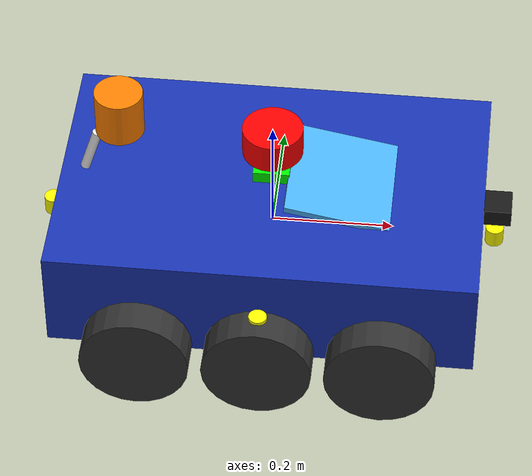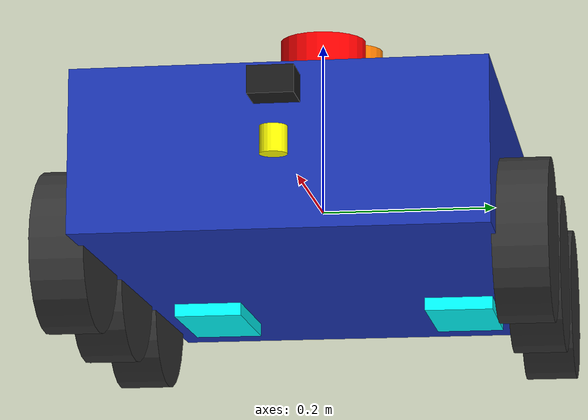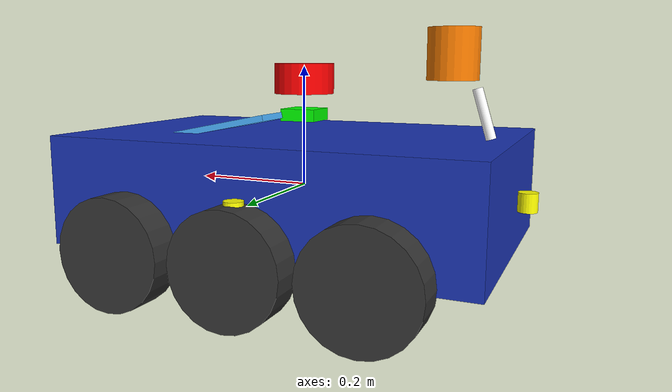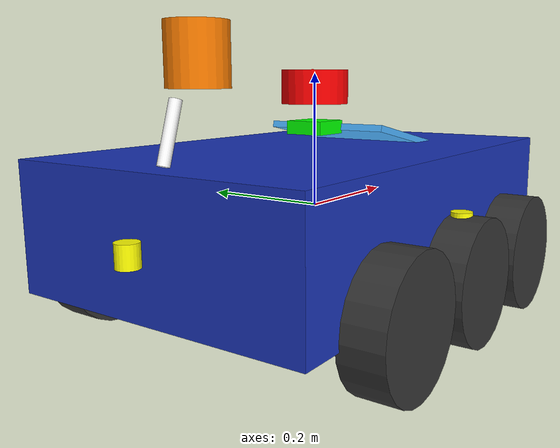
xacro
<?xml version="1.0"?>
<robot xmlns:xacro="http://www.ros.org/wiki/xacro" name="my_rover">

  <!-- Include all sensor files -->
  <xacro:include filename="$(find my_rover_package)/urdf/lidar.xacro"/>
  <xacro:include filename="$(find my_rover_package)/urdf/camera.xacro"/>
  <xacro:include filename="$(find my_rover_package)/urdf/imu.xacro"/>
  <xacro:include filename="$(find my_rover_package)/urdf/gps.xacro"/>
  <xacro:include filename="$(find my_rover_package)/urdf/ultrasonic.xacro"/>

  <!-- MAIN CHASSIS - DARK BLUE -->
  <link name="base_link">
    <visual>
      <geometry>
        <box size="0.7 0.45 0.18"/>
      </geometry>
      <material name="chassis_blue">
        <color rgba="0.1 0.2 0.7 1"/>
      </material>
    </visual>
    <collision>
      <geometry>
        <box size="0.7 0.45 0.18"/>
      </geometry>
    </collision>
    <inertial>
      <mass value="15.0"/>
      <inertia ixx="0.15" ixy="0.0" ixz="0.0" iyy="0.15" iyz="0.0" izz="0.15"/>
    </inertial>
  </link>

  <!-- Gazebo color for chassis -->
  <gazebo reference="base_link">
    <material>Gazebo/Blue</material>
  </gazebo>

  <!-- RPLIDAR A2M8 - BRIGHT RED -->
  <xacro:lidar_sensor parent="base_link">
    <origin xyz="0.0 0 0.18" rpy="0 0 0"/>
  </xacro:lidar_sensor>

  <!-- Camera - BLACK -->
  <xacro:camera_sensor parent="base_link" camera_name="front_camera">
    <origin xyz="0.37 0 0.06" rpy="0 0 0"/>
  </xacro:camera_sensor>

  <!-- IMU - BRIGHT GREEN -->
  <xacro:imu_sensor parent="base_link">
    <origin xyz="0.0 0 0.12" rpy="0 0 0"/>
  </xacro:imu_sensor>

  <!-- GPS - ORANGE -->
  <xacro:gps_sensor parent="base_link">
    <origin xyz="-0.25 0 0.22" rpy="0 0 0"/>
  </xacro:gps_sensor>

  <!-- 4x Ultrasonic - YELLOW -->
  <xacro:ultrasonic_sensor name="ultrasonic_front" parent="base_link">
    <origin xyz="0.37 0 0.0" rpy="0 0 0"/>
  </xacro:ultrasonic_sensor>

  <xacro:ultrasonic_sensor name="ultrasonic_back" parent="base_link">
    <origin xyz="-0.37 0 0.0" rpy="0 0 3.14159"/>
  </xacro:ultrasonic_sensor>

  <xacro:ultrasonic_sensor name="ultrasonic_left" parent="base_link">
    <origin xyz="0 0.24 0.0" rpy="0 0 1.5708"/>
  </xacro:ultrasonic_sensor>

  <xacro:ultrasonic_sensor name="ultrasonic_right" parent="base_link">
    <origin xyz="0 -0.24 0.0" rpy="0 0 -1.5708"/>
  </xacro:ultrasonic_sensor>

  <!-- Battery Pack Indicators - CYAN -->
  <link name="battery_left">
    <visual>
      <geometry>
        <box size="0.15 0.08 0.05"/>
      </geometry>
      <material name="battery_cyan">
        <color rgba="0 1 1 1"/>
      </material>
    </visual>
    <inertial>
      <mass value="0.5"/>
      <inertia ixx="0.001" ixy="0.0" ixz="0.0" iyy="0.001" iyz="0.0" izz="0.001"/>
    </inertial>
  </link>

  <joint name="battery_left_joint" type="fixed">
    <parent link="base_link"/>
    <child link="battery_left"/>
    <origin xyz="-0.15 0.15 -0.08" rpy="0 0 0"/>
  </joint>

  <gazebo reference="battery_left">
    <material>Gazebo/Turquoise</material>
  </gazebo>

  <link name="battery_right">
    <visual>
      <geometry>
        <box size="0.15 0.08 0.05"/>
      </geometry>
      <material name="battery_cyan">
        <color rgba="0 1 1 1"/>
      </material>
    </visual>
    <inertial>
      <mass value="0.5"/>
      <inertia ixx="0.001" ixy="0.0" ixz="0.0" iyy="0.001" iyz="0.0" izz="0.001"/>
    </inertial>
  </link>

  <joint name="battery_right_joint" type="fixed">
    <parent link="base_link"/>
    <child link="battery_right"/>
    <origin xyz="-0.15 -0.15 -0.08" rpy="0 0 0"/>
  </joint>

  <gazebo reference="battery_right">
    <material>Gazebo/Turquoise</material>
  </gazebo>

  <!-- Motor Controllers - MAGENTA -->
  <link name="motor_controller_left">
    <visual>
      <geometry>
        <box size="0.08 0.06 0.03"/>
      </geometry>
      <material name="controller_magenta">
        <color rgba="1 0 1 1"/>
      </material>
    </visual>
    <inertial>
      <mass value="0.1"/>
      <inertia ixx="0.0001" ixy="0.0" ixz="0.0" iyy="0.0001" iyz="0.0" izz="0.0001"/>
    </inertial>
  </link>

  <joint name="motor_controller_left_joint" type="fixed">
    <parent link="base_link"/>
    <child link="motor_controller_left"/>
    <origin xyz="0.1 0.18 -0.05" rpy="0 0 0"/>
  </joint>

  <gazebo reference="motor_controller_left">
    <material>Gazebo/Purple</material>
  </gazebo>

  <link name="motor_controller_right">
    <visual>
      <geometry>
        <box size="0.08 0.06 0.03"/>
      </geometry>
      <material name="controller_magenta">
        <color rgba="1 0 1 1"/>
      </material>
    </visual>
    <inertial>
      <mass value="0.1"/>
      <inertia ixx="0.0001" ixy="0.0" ixz="0.0" iyy="0.0001" iyz="0.0" izz="0.0001"/>
    </inertial>
  </link>

  <joint name="motor_controller_right_joint" type="fixed">
    <parent link="base_link"/>
    <child link="motor_controller_right"/>
    <origin xyz="0.1 -0.18 -0.05" rpy="0 0 0"/>
  </joint>

  <gazebo reference="motor_controller_right">
    <material>Gazebo/Purple</material>
  </gazebo>

  <!-- Solar Panel - SKY BLUE -->
  <link name="solar_panel">
    <visual>
      <geometry>
        <box size="0.25 0.20 0.01"/>
      </geometry>
      <material name="solar_blue">
        <color rgba="0.3 0.7 1 1"/>
      </material>
    </visual>
    <inertial>
      <mass value="0.2"/>
      <inertia ixx="0.001" ixy="0.0" ixz="0.0" iyy="0.001" iyz="0.0" izz="0.001"/>
    </inertial>
  </link>

  <joint name="solar_panel_joint" type="fixed">
    <parent link="base_link"/>
    <child link="solar_panel"/>
    <origin xyz="0.15 0 0.095" rpy="0 0.2 0"/>
  </joint>

  <gazebo reference="solar_panel">
    <material>Gazebo/SkyBlue</material>
  </gazebo>

  <!-- WiFi Antenna - WHITE -->
  <link name="wifi_antenna">
    <visual>
      <geometry>
        <cylinder radius="0.008" length="0.08"/>
      </geometry>
      <material name="antenna_white">
        <color rgba="1 1 1 1"/>
      </material>
    </visual>
    <inertial>
      <mass value="0.01"/>
      <inertia ixx="0.0001" ixy="0.0" ixz="0.0" iyy="0.0001" iyz="0.0" izz="0.0001"/>
    </inertial>
  </link>

  <joint name="wifi_antenna_joint" type="fixed">
    <parent link="base_link"/>
    <child link="wifi_antenna"/>
    <origin xyz="-0.3 0 0.13" rpy="0 0.3 0"/>
  </joint>

  <gazebo reference="wifi_antenna">
    <material>Gazebo/White</material>
  </gazebo>

  <!-- 6 WHEELS - BLACK -->

  <!-- Left Front Wheel -->
  <link name="left_front_wheel">
    <visual>
      <geometry>
        <cylinder radius="0.09" length="0.06"/>
      </geometry>
      <material name="wheel_black">
        <color rgba="0.2 0.2 0.2 1"/>
      </material>
    </visual>
    <collision>
      <geometry>
        <cylinder radius="0.09" length="0.06"/>
      </geometry>
    </collision>
    <inertial>
      <mass value="0.6"/>
      <inertia ixx="0.012" ixy="0.0" ixz="0.0" iyy="0.012" iyz="0.0" izz="0.012"/>
    </inertial>
  </link>

  <joint name="left_front_wheel_joint" type="continuous">
    <parent link="base_link"/>
    <child link="left_front_wheel"/>
    <origin xyz="0.2 0.25 -0.08" rpy="-1.5707 0 0"/>
    <axis xyz="0 0 1"/>
  </joint>

  <gazebo reference="left_front_wheel">
    <material>Gazebo/DarkGrey</material>
    <mu1>1.0</mu1>
    <mu2>1.0</mu2>
  </gazebo>

  <!-- Right Front Wheel -->
  <link name="right_front_wheel">
    <visual>
      <geometry>
        <cylinder radius="0.09" length="0.06"/>
      </geometry>
      <material name="wheel_black">
        <color rgba="0.2 0.2 0.2 1"/>
      </material>
    </visual>
    <collision>
      <geometry>
        <cylinder radius="0.09" length="0.06"/>
      </geometry>
    </collision>
    <inertial>
      <mass value="0.6"/>
      <inertia ixx="0.012" ixy="0.0" ixz="0.0" iyy="0.012" iyz="0.0" izz="0.012"/>
    </inertial>
  </link>

  <joint name="right_front_wheel_joint" type="continuous">
    <parent link="base_link"/>
    <child link="right_front_wheel"/>
    <origin xyz="0.2 -0.25 -0.08" rpy="-1.5707 0 0"/>
    <axis xyz="0 0 1"/>
  </joint>

  <gazebo reference="right_front_wheel">
    <material>Gazebo/DarkGrey</material>
    <mu1>1.0</mu1>
    <mu2>1.0</mu2>
  </gazebo>

  <!-- Left Middle Wheel (Drive) -->
  <link name="left_middle_wheel">
    <visual>
      <geometry>
        <cylinder radius="0.09" length="0.06"/>
      </geometry>
      <material name="wheel_black">
        <color rgba="0.2 0.2 0.2 1"/>
      </material>
    </visual>
    <collision>
      <geometry>
        <cylinder radius="0.09" length="0.06"/>
      </geometry>
    </collision>
    <inertial>
      <mass value="0.6"/>
      <inertia ixx="0.012" ixy="0.0" ixz="0.0" iyy="0.012" iyz="0.0" izz="0.012"/>
    </inertial>
  </link>

  <joint name="left_middle_wheel_joint" type="continuous">
    <parent link="base_link"/>
    <child link="left_middle_wheel"/>
    <origin xyz="0.0 0.25 -0.08" rpy="-1.5707 0 0"/>
    <axis xyz="0 0 1"/>
  </joint>

  <gazebo reference="left_middle_wheel">
    <material>Gazebo/DarkGrey</material>
    <mu1>1.0</mu1>
    <mu2>1.0</mu2>
  </gazebo>

  <!-- Right Middle Wheel (Drive) -->
  <link name="right_middle_wheel">
    <visual>
      <geometry>
        <cylinder radius="0.09" length="0.06"/>
      </geometry>
      <material name="wheel_black">
        <color rgba="0.2 0.2 0.2 1"/>
      </material>
    </visual>
    <collision>
      <geometry>
        <cylinder radius="0.09" length="0.06"/>
      </geometry>
    </collision>
    <inertial>
      <mass value="0.6"/>
      <inertia ixx="0.012" ixy="0.0" ixz="0.0" iyy="0.012" iyz="0.0" izz="0.012"/>
    </inertial>
  </link>

  <joint name="right_middle_wheel_joint" type="continuous">
    <parent link="base_link"/>
    <child link="right_middle_wheel"/>
    <origin xyz="0.0 -0.25 -0.08" rpy="-1.5707 0 0"/>
    <axis xyz="0 0 1"/>
  </joint>

  <gazebo reference="right_middle_wheel">
    <material>Gazebo/DarkGrey</material>
    <mu1>1.0</mu1>
    <mu2>1.0</mu2>
  </gazebo>

  <!-- Left Rear Wheel -->
  <link name="left_rear_wheel">
    <visual>
      <geometry>
        <cylinder radius="0.09" length="0.06"/>
      </geometry>
      <material name="wheel_black">
        <color rgba="0.2 0.2 0.2 1"/>
      </material>
    </visual>
    <collision>
      <geometry>
        <cylinder radius="0.09" length="0.06"/>
      </geometry>
    </collision>
    <inertial>
      <mass value="0.6"/>
      <inertia ixx="0.012" ixy="0.0" ixz="0.0" iyy="0.012" iyz="0.0" izz="0.012"/>
    </inertial>
  </link>

  <joint name="left_rear_wheel_joint" type="continuous">
    <parent link="base_link"/>
    <child link="left_rear_wheel"/>
    <origin xyz="-0.2 0.25 -0.08" rpy="-1.5707 0 0"/>
    <axis xyz="0 0 1"/>
  </joint>

  <gazebo reference="left_rear_wheel">
    <material>Gazebo/DarkGrey</material>
    <mu1>1.0</mu1>
    <mu2>1.0</mu2>
  </gazebo>

  <!-- Right Rear Wheel -->
  <link name="right_rear_wheel">
    <visual>
      <geometry>
        <cylinder radius="0.09" length="0.06"/>
      </geometry>
      <material name="wheel_black">
        <color rgba="0.2 0.2 0.2 1"/>
      </material>
    </visual>
    <collision>
      <geometry>
        <cylinder radius="0.09" length="0.06"/>
      </geometry>
    </collision>
    <inertial>
      <mass value="0.6"/>
      <inertia ixx="0.012" ixy="0.0" ixz="0.0" iyy="0.012" iyz="0.0" izz="0.012"/>
    </inertial>
  </link>

  <joint name="right_rear_wheel_joint" type="continuous">
    <parent link="base_link"/>
    <child link="right_rear_wheel"/>
    <origin xyz="-0.2 -0.25 -0.08" rpy="-1.5707 0 0"/>
    <axis xyz="0 0 1"/>
  </joint>

  <gazebo reference="right_rear_wheel">
    <material>Gazebo/DarkGrey</material>
    <mu1>1.0</mu1>
    <mu2>1.0</mu2>
  </gazebo>

  <!-- Differential drive plugin -->
  <gazebo>
    <plugin name="differential_drive_controller" filename="libgazebo_ros_diff_drive.so">
      <update_rate>50</update_rate>
      <left_joint>left_middle_wheel_joint</left_joint>
      <right_joint>right_middle_wheel_joint</right_joint>
      <wheel_separation>0.5</wheel_separation>
      <wheel_diameter>0.18</wheel_diameter>
      <max_wheel_torque>30</max_wheel_torque>
      <max_wheel_acceleration>1.0</max_wheel_acceleration>
      <command_topic>cmd_vel</command_topic>
      <odometry_topic>odom</odometry_topic>
      <odometry_frame>odom</odometry_frame>
      <robot_base_frame>base_link</robot_base_frame>
      <publish_odom>true</publish_odom>
      <publish_odom_tf>true</publish_odom_tf>
      <publish_wheel_tf>false</publish_wheel_tf>
    </plugin>
  </gazebo>

</robot>

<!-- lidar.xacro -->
<robot xmlns:xacro="http://www.ros.org/wiki/xacro">

  <xacro:macro name="lidar_sensor" params="parent *origin">

    <link name="lidar_link">
      <visual>
        <geometry>
          <cylinder radius="0.05" length="0.05"/>
        </geometry>
        <material name="lidar_red">
          <color rgba="1 0 0 1"/>
        </material>
      </visual>
      <collision>
        <geometry>
          <cylinder radius="0.05" length="0.05"/>
        </geometry>
      </collision>
      <inertial>
        <mass value="0.15"/>
        <inertia ixx="0.001" ixy="0.0" ixz="0.0" iyy="0.001" iyz="0.0" izz="0.001"/>
      </inertial>
    </link>

    <joint name="lidar_joint" type="fixed">
      <parent link="${parent}"/>
      <child link="lidar_link"/>
      <xacro:insert_block name="origin"/>
    </joint>

    <gazebo reference="lidar_link">
      <material>Gazebo/Red</material>
      <sensor type="ray" name="lidar">
        <pose>0 0 0 0 0 0</pose>
        <visualize>true</visualize>
        <update_rate>10</update_rate>
        <ray>
          <scan>
            <horizontal>
              <samples>360</samples>
              <resolution>1</resolution>
              <min_angle>-3.14159</min_angle>
              <max_angle>3.14159</max_angle>
            </horizontal>
          </scan>
          <range>
            <min>0.1</min>
            <max>10.0</max>
            <resolution>0.01</resolution>
          </range>
        </ray>
        <plugin name="gazebo_ros_lidar" filename="libgazebo_ros_ray_sensor.so">
          <ros>
            <remapping>~/out:=/scan</remapping>
          </ros>
          <output_type>sensor_msgs/LaserScan</output_type>
          <frame_name>lidar_link</frame_name>
        </plugin>
      </sensor>
    </gazebo>

  </xacro:macro>

</robot>

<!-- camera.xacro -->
<robot xmlns:xacro="http://www.ros.org/wiki/xacro">

  <xacro:macro name="camera_sensor" params="parent camera_name *origin">

    <link name="${camera_name}_link">
      <visual>
        <geometry>
          <box size="0.05 0.05 0.03"/>
        </geometry>
        <material name="camera_black">
          <color rgba="0.1 0.1 0.1 1"/>
        </material>
      </visual>
      <collision>
        <geometry>
          <box size="0.05 0.05 0.03"/>
        </geometry>
      </collision>
      <inertial>
        <mass value="0.1"/>
        <inertia ixx="0.0001" ixy="0.0" ixz="0.0" iyy="0.0001" iyz="0.0" izz="0.0001"/>
      </inertial>
    </link>

    <joint name="${camera_name}_joint" type="fixed">
      <parent link="${parent}"/>
      <child link="${camera_name}_link"/>
      <xacro:insert_block name="origin"/>
    </joint>

    <link name="${camera_name}_optical_frame"/>

    <joint name="${camera_name}_optical_joint" type="fixed">
      <parent link="${camera_name}_link"/>
      <child link="${camera_name}_optical_frame"/>
      <origin xyz="0 0 0" rpy="-1.5707 0 -1.5707"/>
    </joint>

    <gazebo reference="${camera_name}_link">
      <material>Gazebo/Black</material>
      <sensor type="camera" name="${camera_name}">
        <update_rate>30.0</update_rate>
        <camera name="${camera_name}_camera">
          <horizontal_fov>1.3962634</horizontal_fov>
          <image>
            <width>640</width>
            <height>480</height>
            <format>R8G8B8</format>
          </image>
          <clip>
            <near>0.02</near>
            <far>300</far>
          </clip>
        </camera>
        <plugin name="camera_controller" filename="libgazebo_ros_camera.so">
          <ros>
            <remapping>~/image_raw:=/${camera_name}/image_raw</remapping>
            <remapping>~/camera_info:=/${camera_name}/camera_info</remapping>
          </ros>
          <camera_name>${camera_name}</camera_name>
          <frame_name>${camera_name}_optical_frame</frame_name>
        </plugin>
      </sensor>
    </gazebo>

  </xacro:macro>

</robot>

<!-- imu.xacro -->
<robot xmlns:xacro="http://www.ros.org/wiki/xacro">

  <xacro:macro name="imu_sensor" params="parent *origin">

    <link name="imu_link">
      <visual>
        <geometry>
          <box size="0.06 0.06 0.02"/>
        </geometry>
        <material name="imu_green">
          <color rgba="0 1 0 1"/>
        </material>
      </visual>
      <collision>
        <geometry>
          <box size="0.06 0.06 0.02"/>
        </geometry>
      </collision>
      <inertial>
        <mass value="0.01"/>
        <inertia ixx="0.0001" ixy="0.0" ixz="0.0" iyy="0.0001" iyz="0.0" izz="0.0001"/>
      </inertial>
    </link>

    <joint name="imu_joint" type="fixed">
      <parent link="${parent}"/>
      <child link="imu_link"/>
      <xacro:insert_block name="origin"/>
    </joint>

    <gazebo reference="imu_link">
      <material>Gazebo/Green</material>
      <sensor name="imu_sensor" type="imu">
        <always_on>true</always_on>
        <update_rate>100</update_rate>
        <visualize>true</visualize>
        <plugin filename="libgazebo_ros_imu_sensor.so" name="imu_plugin">
          <ros>
            <remapping>~/out:=/imu/data</remapping>
          </ros>
          <frame_name>imu_link</frame_name>
          <initial_orientation_as_reference>false</initial_orientation_as_reference>

          <angular_velocity>
            <x>
              <noise type="gaussian">
                <mean>0.0</mean>
                <stddev>2e-4</stddev>
              </noise>
            </x>
            <y>
              <noise type="gaussian">
                <mean>0.0</mean>
                <stddev>2e-4</stddev>
              </noise>
            </y>
            <z>
              <noise type="gaussian">
                <mean>0.0</mean>
                <stddev>2e-4</stddev>
              </noise>
            </z>
          </angular_velocity>

          <linear_acceleration>
            <x>
              <noise type="gaussian">
                <mean>0.0</mean>
                <stddev>1.7e-2</stddev>
              </noise>
            </x>
            <y>
              <noise type="gaussian">
                <mean>0.0</mean>
                <stddev>1.7e-2</stddev>
              </noise>
            </y>
            <z>
              <noise type="gaussian">
                <mean>0.0</mean>
                <stddev>1.7e-2</stddev>
              </noise>
            </z>
          </linear_acceleration>
        </plugin>
      </sensor>
    </gazebo>

  </xacro:macro>

</robot>

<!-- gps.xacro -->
<robot xmlns:xacro="http://www.ros.org/wiki/xacro">

  <xacro:macro name="gps_sensor" params="parent *origin">

    <link name="gps_link">
      <visual>
        <geometry>
          <cylinder radius="0.04" length="0.08"/>
        </geometry>
        <material name="gps_orange">
          <color rgba="1.0 0.5 0.0 1"/>
        </material>
      </visual>
      <inertial>
        <mass value="0.02"/>
        <inertia ixx="0.0001" ixy="0.0" ixz="0.0" iyy="0.0001" iyz="0.0" izz="0.0001"/>
      </inertial>
    </link>

    <joint name="gps_joint" type="fixed">
      <parent link="${parent}"/>
      <child link="gps_link"/>
      <xacro:insert_block name="origin"/>
    </joint>

    <gazebo reference="gps_link">
      <material>Gazebo/Orange</material>
      <sensor name="gps_sensor" type="gps">
        <always_on>true</always_on>
        <update_rate>10</update_rate>
        <plugin name="gps_plugin" filename="libgazebo_ros_gps_sensor.so">
          <ros>
            <remapping>~/out:=/gps/fix</remapping>
          </ros>
          <frame_name>gps_link</frame_name>
        </plugin>
      </sensor>
    </gazebo>

  </xacro:macro>

</robot>

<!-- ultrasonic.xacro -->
<robot xmlns:xacro="http://www.ros.org/wiki/xacro">

  <xacro:macro name="ultrasonic_sensor" params="name parent *origin">

    <link name="${name}_link">
      <visual>
        <geometry>
          <cylinder radius="0.015" length="0.03"/>
        </geometry>
        <material name="ultrasonic_yellow">
          <color rgba="1 1 0 1"/>
        </material>
      </visual>
      <collision>
        <geometry>
          <cylinder radius="0.015" length="0.03"/>
        </geometry>
      </collision>
      <inertial>
        <mass value="0.01"/>
        <inertia ixx="0.00001" ixy="0.0" ixz="0.0" iyy="0.00001" iyz="0.0" izz="0.00001"/>
      </inertial>
    </link>

    <joint name="${name}_joint" type="fixed">
      <parent link="${parent}"/>
      <child link="${name}_link"/>
      <xacro:insert_block name="origin"/>
    </joint>

    <gazebo reference="${name}_link">
      <material>Gazebo/Yellow</material>
      <sensor name="${name}_sensor" type="ray">
        <always_on>true</always_on>
        <update_rate>10</update_rate>
        <visualize>true</visualize>
        <ray>
          <scan>
            <horizontal>
              <samples>5</samples>
              <resolution>1</resolution>
              <min_angle>-0.15</min_angle>
              <max_angle>0.15</max_angle>
            </horizontal>
          </scan>
          <range>
            <min>0.02</min>
            <max>4.0</max>
            <resolution>0.01</resolution>
          </range>
        </ray>
        <plugin name="${name}_plugin" filename="libgazebo_ros_ray_sensor.so">
          <ros>
            <remapping>~/out:=/${name}</remapping>
          </ros>
          <output_type>sensor_msgs/Range</output_type>
          <frame_name>${name}_link</frame_name>
          <radiation_type>ultrasound</radiation_type>
        </plugin>
      </sensor>
    </gazebo>

  </xacro:macro>

</robot>
